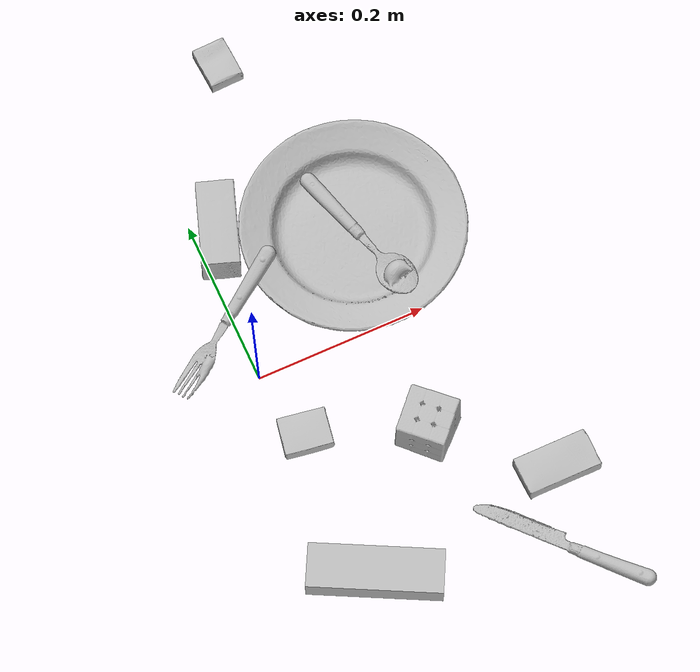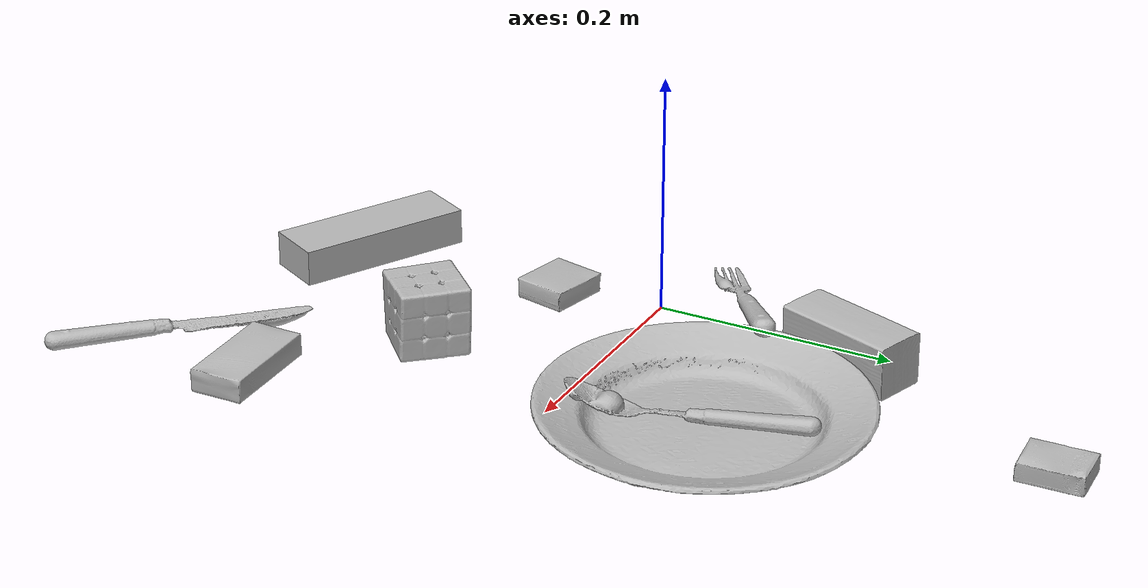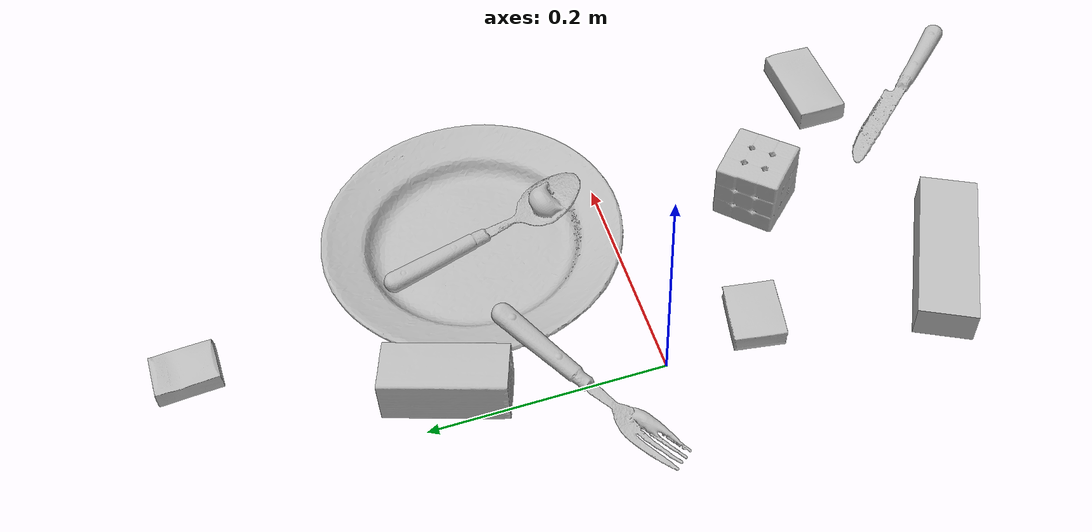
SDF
<sdf version="1.4">
  <world name="default">
    <light name="light1" type="point">
      <pose>0 0 1 0 0 0</pose>
      <diffuse>3 3 3 1</diffuse>
      <specular>3 3 3 1</specular>
    </light>
    <light name="light2" type="point">
      <pose>0 0.5 2 0 0 0</pose>
      <diffuse>1 1 1 1</diffuse>
      <specular>1 1 1 1</specular>
    </light>
    <light name="light3" type="point">
      <pose>0 0.5 2 0 0 0</pose>
      <diffuse>3 3 3 1</diffuse>
      <specular>3 3 3 1</specular>
    </light>
    <scene>
      <ambient>0.7 0.7 0.7</ambient>
    </scene>
    <model name="box11">
      <link name="link_box11">
        <collision name="default">
          <geometry>
            <mesh>
              <uri>model://rubiks_cube/collision_meshes/collision.obj</uri>
              <scale>1.0 1.0 1.0</scale>
            </mesh>
          </geometry>
          <surface>
            <friction>
              <ode>
                <mu>0.5</mu>
                <mu2>0.5</mu2>
              </ode>
            </friction>
          <contact>
        <ode>
            <max_vel>0</max_vel>
            <min_depth>0.0001</min_depth>
            <kp>1e8</kp>
        </ode>
    </contact></surface>
        </collision>
        <visual name="default">
          <geometry>
            <mesh>
              <uri>model://rubiks_cube/visual_meshes/visual.dae</uri>
              <scale>1.0 1.0 1.0</scale>
            </mesh>
          </geometry>
        </visual>
        <inertial>
          <mass>0.14537504315376282</mass>
          <pose>2.6721039830590598e-05 5.2569666877388954e-05 -7.264316082000732e-06 -0.05467316775404926 -0.09814130205097539 -0.03445549690793288</pose>
          <inertia>
            <ixx>8.032947e-05</ixx>
            <iyy>7.9954865e-05</iyy>
            <izz>8.099513e-05</izz>
            <ixy>0</ixy>
            <ixz>0</ixz>
            <iyz>0</iyz>
          </inertia>
        </inertial>
      </link>
      <pose>0.14414648711681366 -0.1357424408197403 0.02867896482348442 -3.4620353992580425e-06 -1.0831948007622503e-06 -2.3408234739807616</pose>
    </model>
    <model name="box12">
      <link name="link_box12">
        <collision name="default">
          <geometry>
            <mesh>
              <uri>model://cracker_box/collision_meshes/collision.obj</uri>
              <scale>0.25 0.25 0.25</scale>
            </mesh>
          </geometry>
          <surface>
            <friction>
              <ode>
                <mu>0.5</mu>
                <mu2>0.5</mu2>
              </ode>
            </friction>
          <contact>
        <ode>
            <max_vel>0</max_vel>
            <min_depth>0.0001</min_depth>
            <kp>1e8</kp>
        </ode>
    </contact></surface>
        </collision>
        <visual name="default">
          <geometry>
            <mesh>
              <uri>model://cracker_box/visual_meshes/visual.dae</uri>
              <scale>0.25 0.25 0.25</scale>
            </mesh>
          </geometry>
        </visual>
        <inertial>
          <mass>0.04629049822688103</mass>
          <pose>0.00023660360602661967 6.358561950037256e-05 -0.00042573834070935845 -0.00031620769195764 -0.01110649332573822 0.0025467952358288496</pose>
          <inertia>
            <ixx>7.358898e-06</ixx>
            <iyy>1.2150985e-05</iyy>
            <izz>1.7340568e-05</izz>
            <ixy>0</ixy>
            <ixz>0</ixz>
            <iyz>0</iyz>
          </inertia>
        </inertial>
      </link>
      <pose>0.11126741766929626 0.3722935914993286 0.009096028283238411 -0.014050043400793164 -0.005016443084950141 -1.521500297129545</pose>
    </model>
    <model name="box13">
      <link name="link_box13">
        <collision name="default">
          <geometry>
            <mesh>
              <uri>model://sugar_box/collision_meshes/collision.obj</uri>
              <scale>0.5 0.5 0.5</scale>
            </mesh>
          </geometry>
          <surface>
            <friction>
              <ode>
                <mu>0.5</mu>
                <mu2>0.5</mu2>
              </ode>
            </friction>
          <contact>
        <ode>
            <max_vel>0</max_vel>
            <min_depth>0.0001</min_depth>
            <kp>1e8</kp>
        </ode>
    </contact></surface>
        </collision>
        <visual name="default">
          <geometry>
            <mesh>
              <uri>model://sugar_box/visual_meshes/visual.dae</uri>
              <scale>0.5 0.5 0.5</scale>
            </mesh>
          </geometry>
        </visual>
        <inertial>
          <mass>0.06844717264175415</mass>
          <pose>0.0005171863595023751 1.924554817378521e-05 -0.00018182402709499002 -0.0004046259509043031 0.0010506635218006705 0.0026153792547683827</pose>
          <inertia>
            <ixx>1.4257497e-05</ixx>
            <iyy>4.608316e-05</iyy>
            <izz>5.5167053e-05</izz>
            <ixy>0</ixy>
            <ixz>0</ixz>
            <iyz>0</iyz>
          </inertia>
        </inertial>
      </link>
      <pose>0.2561883330345154 -0.23295944929122925 0.011399304494261742 0.0007745715692619216 -0.023432982403858958 -3.141266676685642</pose>
    </model>
    <model name="box21">
      <link name="link_box21">
        <collision name="default">
          <geometry>
            <mesh>
              <uri>model://wood_block/collision_meshes/collision.obj</uri>
              <scale>0.5 0.5 0.5</scale>
            </mesh>
          </geometry>
          <surface>
            <friction>
              <ode>
                <mu>0.5</mu>
                <mu2>0.5</mu2>
              </ode>
            </friction>
          <contact>
        <ode>
            <max_vel>0</max_vel>
            <min_depth>0.0001</min_depth>
            <kp>1e8</kp>
        </ode>
    </contact></surface>
        </collision>
        <visual name="default">
          <geometry>
            <mesh>
              <uri>model://wood_block/visual_meshes/visual.dae</uri>
              <scale>0.5 0.5 0.5</scale>
            </mesh>
          </geometry>
        </visual>
        <inertial>
          <mass>0.22006426751613617</mass>
          <pose>-2.9066577553749084e-06 -0.00028540476341731846 0.00013204292918089777 -0.05220890442695651 -0.005192696130650637 -0.006861379915905358</pose>
          <inertia>
            <ixx>7.361981e-05</ixx>
            <iyy>0.00023256506</iyy>
            <izz>0.00023169514</izz>
            <ixy>0</ixy>
            <ixz>0</ixz>
            <iyz>0</iyz>
          </inertia>
        </inertial>
      </link>
      <pose>0.027586204931139946 0.175737202167511 0.02252747304737568 -0.01584466514784146 -0.0004007120316431154 -1.9009287697158899</pose>
    </model>
    <model name="box22">
      <link name="link_box22">
        <collision name="default">
          <geometry>
            <mesh>
              <uri>model://jenga/collision_meshes/collision.obj</uri>
              <scale>1.0 1.0 1.0</scale>
            </mesh>
          </geometry>
          <surface>
            <friction>
              <ode>
                <mu>0.5</mu>
                <mu2>0.5</mu2>
              </ode>
            </friction>
          <contact>
        <ode>
            <max_vel>0</max_vel>
            <min_depth>0.0001</min_depth>
            <kp>1e8</kp>
        </ode>
    </contact></surface>
        </collision>
        <visual name="default">
          <geometry>
            <mesh>
              <uri>model://jenga/visual_meshes/visual.dae</uri>
              <scale>1.0 1.0 1.0</scale>
            </mesh>
          </geometry>
        </visual>
        <inertial>
          <mass>0.1883949637413025</mass>
          <pose>-2.502855807051674e-07 -0.00010250010382151231 -4.0923405322246253e-05 0.0 -7.342154049184251e-07 0.0</pose>
          <inertia>
            <ixx>5.213346e-05</ixx>
            <iyy>0.0003532549</iyy>
            <izz>0.00037712968</izz>
            <ixy>0</ixy>
            <ixz>0</ixz>
            <iyz>0</iyz>
          </inertia>
        </inertial>
      </link>
      <pose>0.02273167483508587 -0.2628592252731323 0.01499999687075615 -8.52505267188838e-09 -2.252898837766091e-09 2.660675101171096</pose>
    </model>
    <model name="box23">
      <link name="link_box23">
        <collision name="default">
          <geometry>
            <mesh>
              <uri>model://pudding_box/collision_meshes/collision.obj</uri>
              <scale>0.5 0.5 0.5</scale>
            </mesh>
          </geometry>
          <surface>
            <friction>
              <ode>
                <mu>0.5</mu>
                <mu2>0.5</mu2>
              </ode>
            </friction>
          <contact>
        <ode>
            <max_vel>0</max_vel>
            <min_depth>0.0001</min_depth>
            <kp>1e8</kp>
        </ode>
    </contact></surface>
        </collision>
        <visual name="default">
          <geometry>
            <mesh>
              <uri>model://pudding_box/visual_meshes/visual.dae</uri>
              <scale>0.5 0.5 0.5</scale>
            </mesh>
          </geometry>
        </visual>
        <inertial>
          <mass>0.030779412016272545</mass>
          <pose>0.00024474109522998333 0.0004033942532259971 -0.0002594413817860186 0.0052131022413302 -0.00660379919873188 0.020079828882866795</pose>
          <inertia>
            <ixx>8.6986365e-06</ixx>
            <iyy>5.8525034e-06</iyy>
            <izz>1.2845808e-05</izz>
            <ixy>0</ixy>
            <ixz>0</ixz>
            <iyz>0</iyz>
          </inertia>
        </inertial>
      </link>
      <pose>0.018929297104477882 -0.08387427031993866 0.009862902574241161 0.02234852103114229 -0.01139169856664564 -1.7470872637365464</pose>
    </model>
    <model name="plate1">
      <link name="link_plate1">
        <collision name="default">
          <geometry>
            <mesh>
              <uri>model://plate/collision_meshes/collision.obj</uri>
              <scale>1.0 1.0 1.0</scale>
            </mesh>
          </geometry>
          <surface>
            <friction>
              <ode>
                <mu>0.5</mu>
                <mu2>0.5</mu2>
              </ode>
            </friction>
          <contact>
        <ode>
            <max_vel>0</max_vel>
            <min_depth>0.0001</min_depth>
            <kp>1e8</kp>
        </ode>
    </contact></surface>
        </collision>
        <visual name="default">
          <geometry>
            <mesh>
              <uri>model://plate/visual_meshes/visual.dae</uri>
              <scale>1.0 1.0 1.0</scale>
            </mesh>
          </geometry>
        </visual>
        <inertial>
          <mass>0.2551877498626709</mass>
          <pose>-0.0006044633337296546 0.0002782584633678198 -0.0010561984963715076 0.002218758596895186 -0.003225500510611216 0.45261892370472845</pose>
          <inertia>
            <ixx>0.0011937734</ixx>
            <iyy>0.0011823553</iyy>
            <izz>0.002334842</izz>
            <ixy>0</ixy>
            <ixz>0</ixz>
            <iyz>0</iyz>
          </inertia>
        </inertial>
      </link>
      <pose>0.16914914548397064 0.11784094572067261 0.013732886873185635 -4.2329936445177567e-07 4.374822406632666e-06 2.4797649684908207</pose>
    </model>
    <model name="silverware1">
      <link name="link_silverware1">
        <collision name="default">
          <geometry>
            <mesh>
              <uri>model://knife/collision_meshes/collision.obj</uri>
              <scale>1.0 1.0 1.0</scale>
            </mesh>
          </geometry>
          <surface>
            <friction>
              <ode>
                <mu>0.5</mu>
                <mu2>0.5</mu2>
              </ode>
            </friction>
          <contact>
        <ode>
            <max_vel>0</max_vel>
            <min_depth>0.0001</min_depth>
            <kp>1e8</kp>
        </ode>
    </contact></surface>
        </collision>
        <visual name="default">
          <geometry>
            <mesh>
              <uri>model://knife/visual_meshes/visual.dae</uri>
              <scale>1.0 1.0 1.0</scale>
            </mesh>
          </geometry>
        </visual>
        <inertial>
          <mass>0.030903667211532593</mass>
          <pose>-0.023785250261425972 0.0015275125624611974 5.062023410573602e-05 0.07305665398911224 0.017248417197799442 -0.0074098217442817044</pose>
          <inertia>
            <ixx>8.7717143e-07</ixx>
            <iyy>0.00011872688</iyy>
            <izz>0.000119009375</izz>
            <ixy>0</ixy>
            <ixz>0</ixz>
            <iyz>0</iyz>
          </inertia>
        </inertial>
      </link>
      <pose>0.22554220259189606 -0.3169417381286621 0.007946577854454517 -0.023851060896550817 -0.014543127928176289 2.3043384108873712</pose>
    </model>
    <model name="silverware2">
      <link name="link_silverware2">
        <collision name="default">
          <geometry>
            <mesh>
              <uri>model://spoon/collision_meshes/collision.obj</uri>
              <scale>1.0 1.0 1.0</scale>
            </mesh>
          </geometry>
          <surface>
            <friction>
              <ode>
                <mu>0.5</mu>
                <mu2>0.5</mu2>
              </ode>
            </friction>
          <contact>
        <ode>
            <max_vel>0</max_vel>
            <min_depth>0.0001</min_depth>
            <kp>1e8</kp>
        </ode>
    </contact></surface>
        </collision>
        <visual name="default">
          <geometry>
            <mesh>
              <uri>model://spoon/visual_meshes/visual.dae</uri>
              <scale>1.0 1.0 1.0</scale>
            </mesh>
          </geometry>
        </visual>
        <inertial>
          <mass>0.020994963124394417</mass>
          <pose>-0.005526323337107897 -0.00160341733135283 -0.0007271658978424966 0.035216710718480135 -0.03906584501417282 0.00615060951780049</pose>
          <inertia>
            <ixx>1.1677738e-06</ixx>
            <iyy>7.988513e-05</iyy>
            <izz>8.046103e-05</izz>
            <ixy>0</ixy>
            <ixz>0</ixz>
            <iyz>0</iyz>
          </inertia>
        </inertial>
      </link>
      <pose>0.17329192161560059 0.10730044543743134 0.01514127105474472 0.1665164983029291 -0.0025282836976102114 -1.2824573293655959</pose>
    </model>
    <model name="silverware3">
      <link name="link_silverware3">
        <collision name="default">
          <geometry>
            <mesh>
              <uri>model://fork/collision_meshes/collision.obj</uri>
              <scale>1.0 1.0 1.0</scale>
            </mesh>
          </geometry>
          <surface>
            <friction>
              <ode>
                <mu>0.5</mu>
                <mu2>0.5</mu2>
              </ode>
            </friction>
          <contact>
        <ode>
            <max_vel>0</max_vel>
            <min_depth>0.0001</min_depth>
            <kp>1e8</kp>
        </ode>
    </contact></surface>
        </collision>
        <visual name="default">
          <geometry>
            <mesh>
              <uri>model://fork/visual_meshes/visual.dae</uri>
              <scale>1.0 1.0 1.0</scale>
            </mesh>
          </geometry>
        </visual>
        <inertial>
          <mass>0.012144052423536777</mass>
          <pose>-0.029570043087005615 0.0004658822144847363 0.0003218860656488687 -0.013551171335247731 -0.01097783699854739 0.014453902564514984</pose>
          <inertia>
            <ixx>4.257177e-07</ixx>
            <iyy>3.170462e-05</iyy>
            <izz>3.1895037e-05</izz>
            <ixy>0</ixy>
            <ixz>0</ixz>
            <iyz>0</iyz>
          </inertia>
        </inertial>
      </link>
      <pose>-0.00840347446501255 0.07077348232269287 0.019158905372023582 0.12077242997606097 0.23805024761796367 -2.5568136946531936</pose>
    </model>
  <physics type="ode">
      <max_contacts>50</max_contacts>
      <ode>
        <solver>
          <type>quick</type>
          <iters>75</iters>
        </solver>
        <constraints>
          <contact_max_correcting_vel>0</contact_max_correcting_vel>
          <contact_surface_layer>0</contact_surface_layer>
        </constraints>
      </ode>
    </physics></world>
</sdf>
